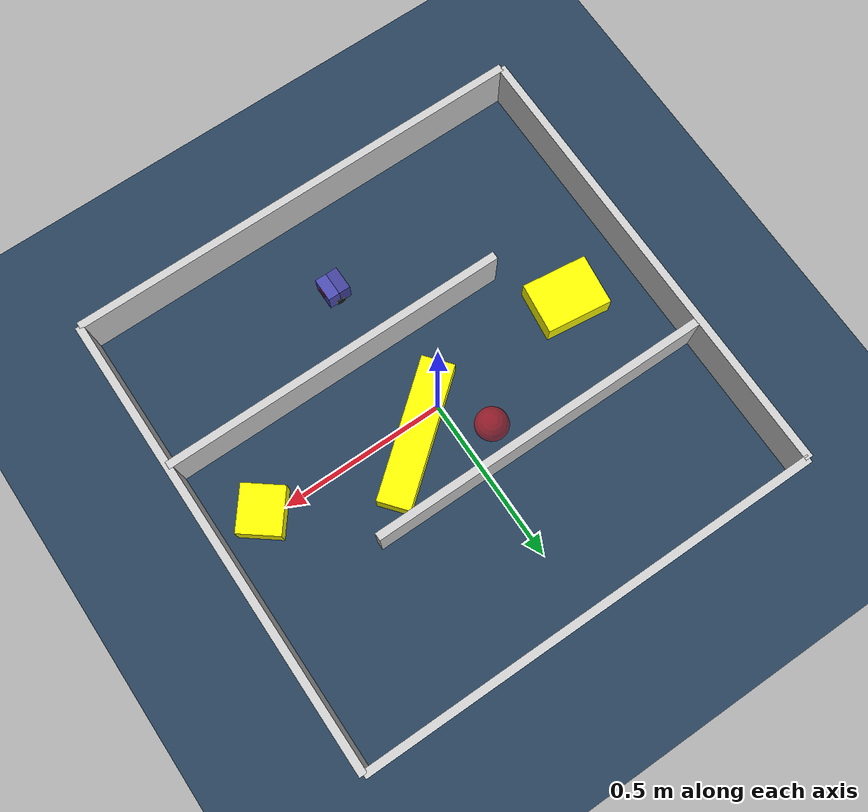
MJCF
<?xml version='1.0' encoding='utf-8'?>
<mujoco model="generated_environment">
  <option timestep="0.002" integrator="implicitfast" cone="elliptic" iterations="100" gravity="0 0 -9.81" />
  <default>
    <geom density="1" />
  </default>
  <asset>
    <texture builtin="gradient" height="3072" rgb1="0.3 0.5 0.7" rgb2="0 0 0" type="skybox" width="512" />
    <texture builtin="checker" height="300" mark="edge" markrgb="0.8 0.8 0.8" name="groundplane" rgb1="0.2 0.3 0.4" rgb2="0.1 0.2 0.3" type="2d" width="300" />
    <material name="groundplane" reflectance="0.2" texrepeat="5 5" texture="groundplane" texuniform="true" />
    <material name="robot" rgba="1.0 1.0 0.0 1.0" />
  </asset>
  <worldbody>
    <light dir="0 0 -1" directional="true" pos="0 0 1.5" />
    <geom condim="4" friction="0.5 0.005 0.001" material="groundplane" name="floor" size="0 0 0.05" type="plane" />
    <body name="walls">
      <geom name="wall_1" condim="4" pos="-0.699000 0.000000 0.080000" rgba="0.800000011920929 0.800000011920929 0.800000011920929 1.0" size="0.011650 0.699000 0.080000" type="box" />
      <geom name="wall_2" condim="4" pos="0.699000 0.000000 0.080000" rgba="0.800000011920929 0.800000011920929 0.800000011920929 1.0" size="0.011650 0.699000 0.080000" type="box" />
      <geom name="wall_3" condim="4" pos="0.000000 -0.699000 0.080000" rgba="0.800000011920929 0.800000011920929 0.800000011920929 1.0" size="0.699000 0.011650 0.080000" type="box" />
      <geom name="wall_4" condim="4" pos="0.000000 0.699000 0.080000" rgba="0.800000011920929 0.800000011920929 0.800000011920929 1.0" size="0.699000 0.011650 0.080000" type="box" />
      <geom name="wall_5" condim="4" pos="0.174750 -0.233000 0.080000" rgba="0.800000011920929 0.800000011920929 0.800000011920929 1.0" size="0.524250 0.011650 0.080000" type="box" />
      <geom name="wall_6" condim="4" pos="-0.174750 0.233000 0.080000" rgba="0.800000011920929 0.800000011920929 0.800000011920929 1.0" size="0.524250 0.011650 0.080000" type="box" />
    </body>
    <body name="car" pos="0.055000000000000264 -0.4450000000000002 0.010000">
      <freejoint name="car_freejoint" />
      <inertial pos="0.000000 0 0.037500" mass="0.350000" diaginertia="0.000266 0.000266 0.000286" />
      <geom name="front_chassis_collision" type="box" pos="0.017500 0 0.037500" size="0.017500 0.035000 0.032500" rgba="0.3 0.3 0.7 1" />
      <geom name="rear_chassis_collision" type="box" pos="-0.017500 0 0.037500" size="0.017500 0.035000 0.032500" rgba="0.25 0.25 0.6 1" />
      <geom name="front_marker" type="box" pos="0.034000 0 0.050500" size="0.002000 0.015000 0.010000" rgba="1.0 0.2 0.2 1" contype="0" conaffinity="0" />
      <body name="rear_support_body" pos="-0.030000 0.000000 0.002500">
        <joint name="rear_caster_joint" type="ball" damping="0.0001" />
        <inertial pos="0 0 0" mass="0.025000" diaginertia="0.000001 0.000001 0.000001" />
        <geom name="rear_support" type="sphere" pos="0 0 0" size="0.002500" friction="0.000000 0.000000 0.000000" rgba="0.7 0.1 0.1 1" />
      </body>
      <body name="front_support_body" pos="0.030000 0.000000 0.002500">
        <joint name="front_caster_joint" type="ball" damping="0.0001" />
        <inertial pos="0 0 0" mass="0.025000" diaginertia="0.000001 0.000001 0.000001" />
        <geom name="front_support" type="sphere" pos="0 0 0" size="0.002500" friction="0.000000 0.000000 0.000000" rgba="0.1 0.7 0.1 1" />
      </body>
      <body name="left_wheel" pos="0.000000 0.037500 0.015000">
        <inertial pos="0 0 0" mass="0.050000" diaginertia="0.000003 0.000006 0.000003" />
        <joint name="left_wheel_joint" type="hinge" axis="0 1 0" />
        <geom name="left_wheel_collision" type="cylinder" size="0.015000 0.000500" euler="90 0 0" rgba="0.1 0.1 0.1 1" />
      </body>
      <body name="right_wheel" pos="0.000000 -0.037500 0.015000">
        <inertial pos="0 0 0" mass="0.050000" diaginertia="0.000003 0.000006 0.000003" />
        <joint name="right_wheel_joint" type="hinge" axis="0 1 0" />
        <geom name="right_wheel_collision" type="cylinder" size="0.015000 0.000500" euler="90 0 0" rgba="0.1 0.1 0.1 1" />
      </body>
    </body>
    <body name="obstacle_0_movable">
      <geom name="obstacle_0_movable" condim="4" pos="-0.47357162003813114 -0.05221628436730097 0.035" euler="0 0 172.95283564268036" friction="0.0 0.005 0.001" rgba="1 1 0 1" size="0.09841365738041566 0.07704290503712324 0.035" type="box" mass="0.1" />
      <joint type="free" />
    </body>
    <body name="obstacle_1_movable">
      <geom name="obstacle_1_movable" condim="4" pos="0.0994526340773475 0.0390665141922808 0.035" euler="0 0 309.19977246602633" friction="0.0 0.005 0.001" rgba="1 1 0 1" size="0.04870936239931631 0.2134257233394547 0.035" type="box" mass="0.1" />
      <joint type="free" />
    </body>
    <body name="obstacle_2_movable">
      <geom name="obstacle_2_movable" condim="4" pos="0.5604909492289436 -0.01885880485391611 0.035" euler="0 0 232.0006708908048" friction="0.0 0.005 0.001" rgba="1 1 0 1" size="0.06939108671952327 0.06295276754385477 0.035" type="box" mass="0.1" />
      <joint type="free" />
    </body>
    <site name="goal" type="sphere" pos="-0.09500000000000008 0.1250000000000001 0.0" size="0.05" rgba="1 0 0 0.5" />
  </worldbody>
  <actuator>
    <velocity name="left_wheel_drive" joint="left_wheel_joint" ctrlrange="-25.000000 25.000000" kv="0.750000" forcerange="-0.300000 0.300000" />
    <velocity name="right_wheel_drive" joint="right_wheel_joint" ctrlrange="-25.000000 25.000000" kv="0.750000" forcerange="-0.300000 0.300000" />
  </actuator>
</mujoco>
